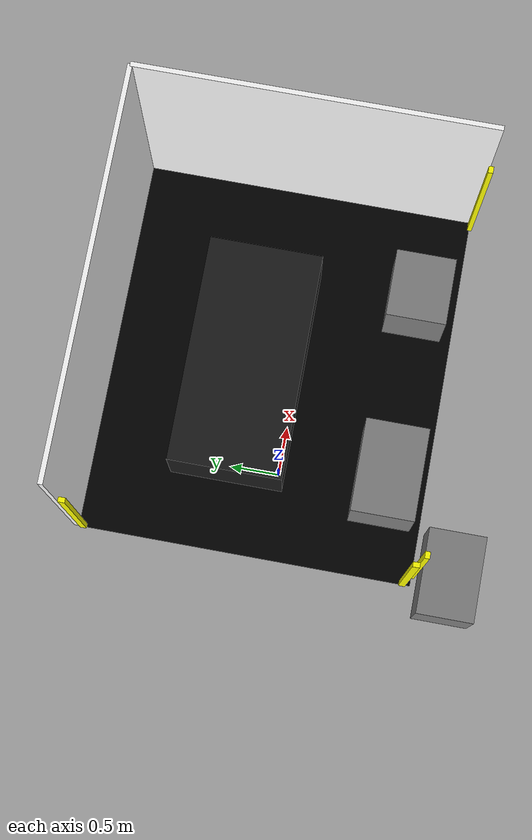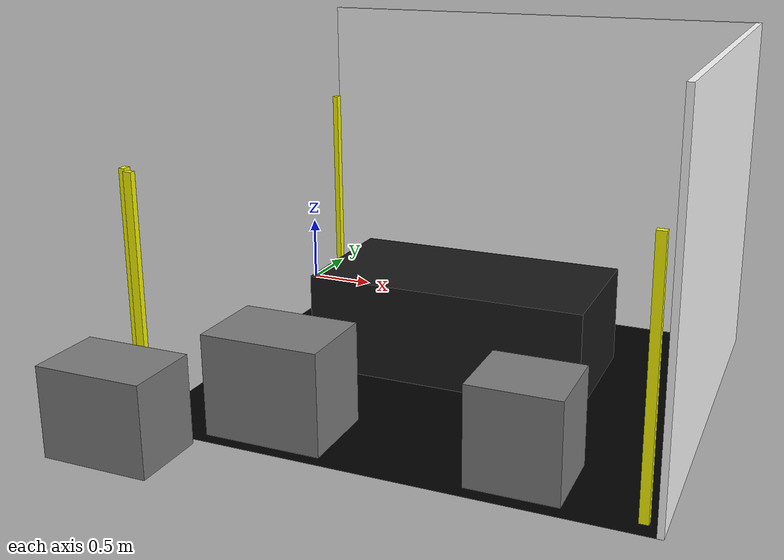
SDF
<sdf version="1.10">
 <world name="lab">
  <scene><grid>false</grid><shadows>false</shadows></scene>
  <physics name="1ms" type="ignored">
   <max_step_size>0.001</max_step_size>
   <real_time_factor>1.0</real_time_factor>
  </physics>
  <plugin filename="gz-sim-physics-system" name="gz::sim::systems::Physics">
   <physics><real_time_update_rate>250</real_time_update_rate><iters>20</iters></physics>
  </plugin>
  <plugin filename="gz-sim-user-commands-system" name="gz::sim::systems::UserCommands"/>
  <plugin filename="gz-sim-scene-broadcaster-system" name="gz::sim::systems::SceneBroadcaster"/>
  <plugin filename="gz-sim-sensors-system" name="gz::sim::systems::Sensors">
   <render_engine>ogre2</render_engine>
  </plugin>
  <plugin filename="gz-sim-contact-system" name="gz::sim::systems::Contact"/>
  <light type="directional" name="sun">
   <pose>0 0 10 0 0 0</pose>
   <diffuse>0.8 0.8 0.8 1</diffuse>
   <specular>0.2 0.2 0.2 1</specular>
   <attenuation>
    <range>1000</range>
    <constant>0.9</constant>
    <linear>0.01</linear>
    <quadratic>0.001</quadratic>
   </attenuation>
   <direction>-0.5 0.1 -0.9</direction>
   <visualize>false</visualize>
  </light>
  <include>
   <name>optical_table</name>
   <pose>1.1792 0.5696 -0.425 0 0 0</pose>
   <uri>model://optical_table</uri>
  </include>
  <include>
   <name>franka_cart</name>
   <pose>0.2792125 -1.126075 -0.45510625 0 0 0</pose>
   <uri>model://franka_cart</uri>
  </include>
  <include>
   <name>ur_cart</name>
   <pose>2.2792125 -1.126075 -0.47495 0 0 0</pose>
   <uri>model://ur_cart</uri>
  </include>
  <include>
   <name>work_area</name>
   <pose>1.2792125 0.248925 -0.87495 0 0 0</pose>
   <uri>model://work_area</uri>
  </include>
  <include><name>walls</name><pose>1.2792125 0.248925 -0.875 0 0 0</pose><uri>model://walls</uri></include>
  <include>
   <name>light_bars</name>
   <pose>1.2792125 0.248925 -0.875 0 0 0</pose>
   <uri>model://light_bars</uri>
  </include>
  <include>
   <name>teach_table</name>
   <pose>1.2792125 0.248925 -0.875 0 0 0</pose>
   <uri>model://teach_table</uri>
  </include>
  <plugin filename="libSpawnPart.so" name="aprs_plugins::SpawnPartPlugin"/>
 </world>
</sdf>

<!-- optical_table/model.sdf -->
<sdf version="1.6">
  <model name="optical_table">
    <static>true</static>

    <link name="optical_table_link">

      <visual name="optical_table_visual">
        <!-- Pose removed as it is now defined in the world file -->
        <geometry>
          <box>
            <size> 2.4384 1.2192 0.85 </size>
          </box>
        </geometry>
        <material>
          <ambient>0.0 0.0 0.0 1.0</ambient>
          <diffuse>0.1 0.1 0.1 1.0</diffuse>
        </material>
      </visual>

      <collision name="optical_table_collision">
        <!-- Pose removed as it is now defined in the world file -->
        <geometry>
          <box>
            <size> 2.4384 1.2192 0.84455 </size>
          </box>
        </geometry>
      </collision>

    </link>

    <link name="corner_link">
      <pose>0 0 0 0 0 0</pose>
    </link>

    <plugin
      filename="libTFPublisherPlugin.so"
      name="aprs_plugins::TFPublisherPlugin">
      <base_link>optical_table_link</base_link>
      <static>true</static>
      <child link="corner_link" frame="corner_frame"/>

    </plugin>
  </model>
</sdf>

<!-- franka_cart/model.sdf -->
<sdf version="1.6">
  <model name="franka_cart">
    <static>true</static>

    <link name="franka_cart_link">

      <visual name="franka_cart_visual">
        <!-- Pose removed as it is now defined in the world file -->
        <geometry>
          <box>
            <size> 0.9890125 0.6746875 0.8397875 </size>
          </box>
        </geometry>
        <material>
            <ambient>0.0 0.0 0.0 1.0</ambient>
            <diffuse>0.5 0.5 0.5 1.0</diffuse>
        </material>
      </visual>

      <collision name="franka_cart_collision">
        <!-- Pose removed as it is now defined in the world file -->
        <geometry>
          <box>
            <size> 0.9890125 0.6746875 0.8397875 </size>
          </box>
        </geometry>
      </collision>

    </link>
  </model>
</sdf>

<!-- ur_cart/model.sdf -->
<sdf version="1.6">
  <model name="ur_cart">
    <static>true</static>

    <link name="ur_cart_link">

      <visual name="ur_cart_visual">
        <!-- Pose removed as it is now defined in the world file -->
        <geometry>
          <box>
            <size> 0.727075 0.644525 0.8001 </size>
          </box>
        </geometry>
        <material>
            <ambient>0.0 0.0 0.0 1.0</ambient>
            <diffuse>0.5 0.5 0.5 1.0</diffuse>
        </material>
      </visual>

      <collision name="ur_cart_collision">
        <!-- Pose removed as it is now defined in the world file -->
        <geometry>
          <box>
            <size> 0.727075 0.644525 0.8001 </size>
          </box>
        </geometry>
      </collision>

    </link>
  </model>
</sdf>

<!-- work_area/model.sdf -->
<sdf version="1.6">
  <model name="work_area">
    <static>true</static>

    <link name="work_area_link">

      <visual name="work_area_visual">
        <!-- Pose removed as it is now defined in the world file -->
        <geometry>
          <box>
            <size> 4.1402 3.6322 0.0001 </size>
          </box>
        </geometry>
        <material>
            <ambient>0.0 0.0 0.0 1.0</ambient>
            <diffuse>0.0 0.0 0.0 1.0</diffuse>
        </material>
      </visual>

      <collision name="work_area_collision">
        <!-- Pose removed as it is now defined in the world file -->
        <geometry>
          <box>
            <size> 4.1402 3.6322 0.0001 </size>
          </box>
        </geometry>
      </collision>

    </link>
  </model>
</sdf>

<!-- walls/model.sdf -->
<sdf version="1.6">
  <model name="walls">
    <static>true</static>

    <link name="base_link" />

    <link name="tv_wall">
      <visual name="visual">
        <pose>2.0701 0 1.5 0 0 0</pose>
        <geometry>
          <box>
            <size> 0.05 3.6322 3 </size>
          </box>
        </geometry>
        <material>
            <ambient>0.0 0.0 0.0 1.0</ambient>
            <diffuse>1.0 1.0 1.0 1.0</diffuse>
        </material>
      </visual>

      <collision name="collision">
        <pose>2.0701 0 1.5 0 0 0</pose>
        <geometry>
          <box>
            <size> 0.05 3.6322 3 </size>
          </box>
        </geometry>
      </collision>

    </link>
    <link name="side_wall">
      <visual name="visual">
        <pose>0 1.8161 1.5 0 0 0</pose>
        <geometry>
          <box>
            <size> 4.1402 0.05 3 </size>
          </box>
        </geometry>
        <material>
            <ambient>0.0 0.0 0.0 1.0</ambient>
            <diffuse>1.0 1.0 1.0 1.0</diffuse>
        </material>
      </visual>

      <collision name="collision">
        <pose>0 1.8161 1.5 0 0 0</pose>
        <geometry>
          <box>
            <size> 4.1402 0.05 3 </size>
          </box>
        </geometry>
      </collision>

    </link>

    <joint name="base_to_tv_wall" type="fixed">
      <parent>base_link</parent>
      <child>tv_wall</child>
    </joint>

    <joint name="base_to_side_wall" type="fixed">
      <parent>base_link</parent>
      <child>side_wall</child>
    </joint>

  </model>
</sdf>

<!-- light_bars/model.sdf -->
<sdf version="1.6">
  <model name="light_bars">
    <static>true</static>

    <link name="light_bars_link">

      <visual name="light_bar_tv_wall">
        <pose>1.9601 -1.8161 1.1 0 0 0</pose>
        <geometry>
          <box>
            <size> 0.07 0.05 2 </size>
          </box>
        </geometry>
        <material>
            <ambient>0.0 0.0 0.0 1.0</ambient>
            <diffuse>1.0 1.0 0.0 1.0</diffuse>
        </material>
      </visual>

      <collision name="light_bar_tv_wall_collision">
        <pose>1.9601 -1.8161 1.1 0 0 0</pose>
        <geometry>
          <box>
            <size> 0.07 0.05 2 </size>
          </box>
        </geometry>
      </collision>

      <visual name="light_bar_to_tv_wall">
        <pose>-1.9601 -1.8161 1.1 0 0 0</pose>
        <geometry>
          <box>
            <size> 0.07 0.05 2 </size>
          </box>
        </geometry>
        <material>
            <ambient>0.0 0.0 0.0 1.0</ambient>
            <diffuse>1.0 1.0 0.0 1.0</diffuse>
        </material>
      </visual>

      <collision name="light_bar_to_tv_wall_collision">
        <pose>-1.9601 -1.8161 1.1 0 0 0</pose>
        <geometry>
          <box>
            <size> 0.07 0.05 2 </size>
          </box>
        </geometry>
      </collision>

      <visual name="light_bar_side_wall">
        <pose>-2.0701 1.7261 1.1 0 0 0</pose>
        <geometry>
          <box>
            <size> 0.05 0.07 2 </size>
          </box>
        </geometry>
        <material>
            <ambient>0.0 0.0 0.0 1.0</ambient>
            <diffuse>1.0 1.0 0.0 1.0</diffuse>
        </material>
      </visual>

      <collision name="light_bar_side_wall_collision">
        <pose>-2.0701 1.7261 1.1 0 0 0</pose>
        <geometry>
          <box>
            <size> 0.05 0.07 2 </size>
          </box>
        </geometry>
      </collision>

      <visual name="light_bar_to_side_wall">
        <pose>-2.0701 -1.7261 1.1 0 0 0</pose>
        <geometry>
          <box>
            <size> 0.05 0.07 2 </size>
          </box>
        </geometry>
        <material>
            <ambient>0.0 0.0 0.0 1.0</ambient>
            <diffuse>1.0 1.0 0.0 1.0</diffuse>
        </material>
      </visual>

      <collision name="light_bars_side_wall_collision">
        <pose>-2.0701 -1.7261 1.1 0 0 0</pose>
        <geometry>
          <box>
            <size> 0.05 0.07 2 </size>
          </box>
        </geometry>
      </collision>

    </link>
  </model>
</sdf>

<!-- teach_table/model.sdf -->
<sdf version="1.6">
  <model name="teach_table">
    <static>true</static>

    <link name="teach_table_link">

      <visual name="teach_table_visual">
        <pose> -1.95505 -2.181225 0.371475 0 0 0</pose>
        <geometry>
          <box>
            <size> 0.9017 0.60325 0.74295 </size>
          </box>
        </geometry>
        <material>
            <ambient>0.0 0.0 0.0 1.0</ambient>
            <diffuse>0.5 0.5 0.5 1.0</diffuse>
        </material>
      </visual>

      <collision name="teach_table_collision">
        <pose> -1.95505 -2.181225 0.371475 0 0 0</pose>
        <geometry>
          <box>
            <size> 0.9017 0.60325 0.74295 </size>
          </box>
        </geometry>
      </collision>

    </link>
  </model>
</sdf>
